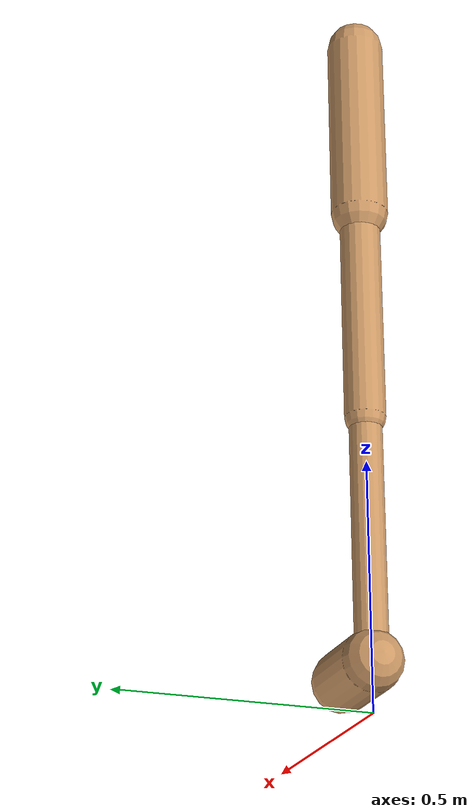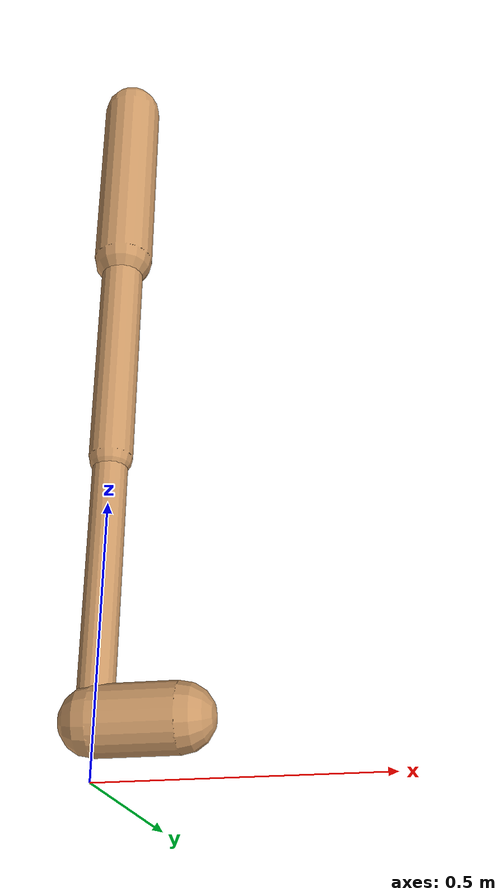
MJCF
<mujoco model="walker2d">
  <compiler angle="degree" coordinate="global" inertiafromgeom="true" />
  <default>
    <joint armature="0.01" damping=".1" limited="true" />
    <geom conaffinity="0" condim="3" contype="1" density="1000" friction="0.8 .1 .1" rgba="0.8 0.6 .4 1" />
  </default>
  <option integrator="RK4" timestep="0.002" />
  <worldbody>

    <body name="torso" pos="0 0 0.012276596564485352">
      <joint armature="0" axis="1 0 0" damping="0" limited="false" name="ignorex" pos="0 0 0" stiffness="0" type="slide" />
      <joint armature="0" axis="0 0 1" damping="0" limited="false" name="ignorez" pos="0 0 0" ref="1.25" stiffness="0" type="slide" />
      <joint armature="0" axis="0 1 0" damping="0" limited="false" name="ignorey" pos="0 0 0" stiffness="0" type="hinge" />
      <geom fromto="0 0 1.45 0 0 1.05" name="torso_geom" size="0.05839056027060679" type="capsule" />
      <body name="thigh">
        <joint axis="0 -1 0" name="thigh_joint" pos="0 0 1.05" range="-150 0" type="hinge" />
        <geom fromto="0.0 0.0 1.05 0.0 0.0 0.5941847700484016" name="thigh_geom" size="0.0411698800038767" type="capsule" />
        <body name="leg" pos="0.0 0.0 -0.005815229951598333">
          <joint axis="0 -1 0" name="leg_joint" pos="0 0 0.6" range="-150 0" type="hinge" />
          <geom fromto="0.0 0.0 0.6 0.0 0.0 0.09353863338711298" name="leg_geom" size="0.032935904003101354" type="capsule" />
          <body name="foot" pos="0.0 0.0 -0.006461366612887029">
            <joint axis="0 -1 0" name="foot_joint" pos="0 0 0.1" range="-45 45" type="hinge" />
            <geom fromto="0.0 0.0 0.1 0.1490406000628651 0.0 0.1" name="foot_geom" size="0.06084875647994988" type="capsule" />
          </body>
        </body>
      </body>

      <body name="thigh_left">
        <joint axis="0 -1 0" name="thigh_left_joint" pos="0 0 1.05" range="-150 0" type="hinge" />
        <geom fromto="0.0 0.0 1.05 0.0 0.0 0.5941847700484016" name="thigh_left_geom" rgba=".7 .3 .6 1" size="0.0411698800038767" type="capsule" />
        <body name="leg_left" pos="0.0 0.0 -0.005815229951598333">
          <joint axis="0 -1 0" name="leg_left_joint" pos="0 0 0.6" range="-150 0" type="hinge" />
          <geom fromto="0.0 0.0 0.6 0.0 0.0 0.09353863338711298" name="leg_left_geom" rgba=".7 .3 .6 1" size="0.032935904003101354" type="capsule" />
          <body name="foot_left" pos="0.0 0.0 -0.006461366612887029">
            <joint axis="0 -1 0" name="foot_left_joint" pos="0 0 0.1" range="-45 45" type="hinge" />
            <geom fromto="0.0 0.0 0.1 0.1490406000628651 0.0 0.1" name="foot_left_geom" rgba=".7 .3 .6 1" size="0.06084875647994988" type="capsule" />
          </body>
        </body>
      </body>
    </body>
  </worldbody>
  <actuator>

    <motor ctrllimited="true" ctrlrange="-1.0 1.0" gear="100" joint="thigh_joint" />
    <motor ctrllimited="true" ctrlrange="-1.0 1.0" gear="100" joint="leg_joint" />
    <motor ctrllimited="true" ctrlrange="-1.0 1.0" gear="100" joint="foot_joint" />
    <motor ctrllimited="true" ctrlrange="-1.0 1.0" gear="100" joint="thigh_left_joint" />
    <motor ctrllimited="true" ctrlrange="-1.0 1.0" gear="100" joint="leg_left_joint" />
    <motor ctrllimited="true" ctrlrange="-1.0 1.0" gear="100" joint="foot_left_joint" />

  </actuator>
</mujoco>
